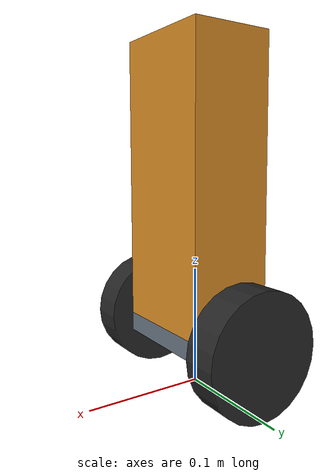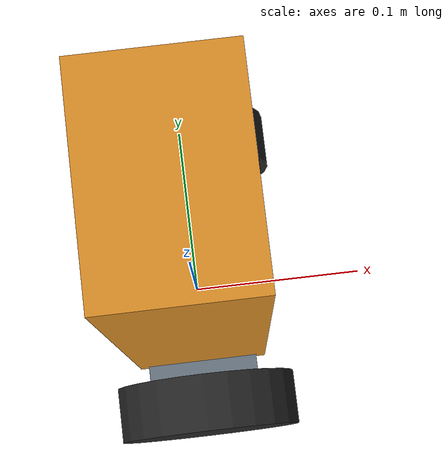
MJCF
<mujoco model="balance_bot">
  <compiler angle="radian" autolimits="true"/>

  <default>
    <default class="balance_bot">
      <geom friction="1.0 0.02 0.001" condim="4"/>
      <default class="wheel">
        <joint type="hinge" axis="0 1 0" damping="0.008" armature="2e-4" frictionloss="1e-3"/>
        <!-- Tyre friction is kept below the lowest randomized ground friction so
             that MuJoCo's max() contact rule lets the ground value dominate. -->
        <geom type="cylinder" size="0.05 0.015" quat="0.7071068 0.7071068 0 0"
              rgba="0.15 0.15 0.15 1" friction="0.2 0.02 0.001"/>
        <!-- Peak torque 0.5 Nm, matching a small geared DC motor. Mirrors the
             EV3's open-loop duty-cycle motor control (no speed servo). -->
        <motor ctrlrange="-1 1" gear="0.5"/>
      </default>
    </default>
  </default>

  <worldbody>
    <body name="chassis" pos="0 0 0.05" childclass="balance_bot">
      <freejoint name="root"/>
      <site name="imu" pos="0 0 0.05" size="0.005" rgba="0 1 0 1"/>

      <!-- Axle housing at wheel height. -->
      <geom name="axle" type="box" size="0.03 0.06 0.015" pos="0 0 0"
            mass="0.15" rgba="0.4 0.45 0.5 1"/>
      <!-- Battery / electronics stack: the mass sits high above the axle, so
           the robot is an inverted pendulum that must be actively balanced. -->
      <geom name="body" type="box" size="0.035 0.05 0.12" pos="0 0 0.125"
            mass="0.95" rgba="0.85 0.55 0.15 1"/>
      <geom name="mast" type="capsule" fromto="0 0 0.015 0 0 0.085" size="0.012"
            mass="0.05" rgba="0.6 0.6 0.65 1"/>

      <body name="left_wheel_link" pos="0 0.075 0">
        <joint name="left_wheel" class="wheel"/>
        <geom name="left_wheel" class="wheel" mass="0.09"/>
      </body>
      <body name="right_wheel_link" pos="0 -0.075 0">
        <joint name="right_wheel" class="wheel"/>
        <geom name="right_wheel" class="wheel" mass="0.09"/>
      </body>
    </body>
  </worldbody>

  <actuator>
    <motor name="left_wheel" joint="left_wheel" class="wheel"/>
    <motor name="right_wheel" joint="right_wheel" class="wheel"/>
  </actuator>

  <!-- Onboard sensor suite of the real robot. The policy only consumes
       quantities that can be derived from these. -->
  <sensor>
    <framequat name="imu_quat" objtype="site" objname="imu"/>
    <gyro name="imu_gyro" site="imu"/>
    <jointpos name="left_wheel_pos" joint="left_wheel"/>
    <jointpos name="right_wheel_pos" joint="right_wheel"/>
  </sensor>
</mujoco>
